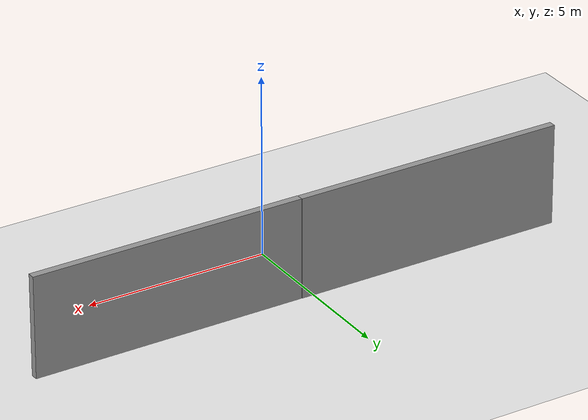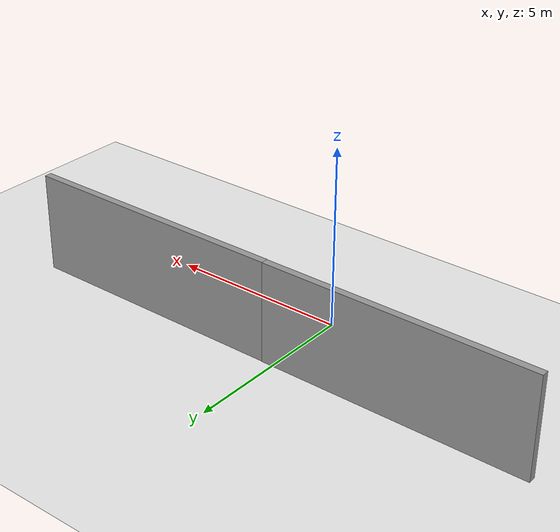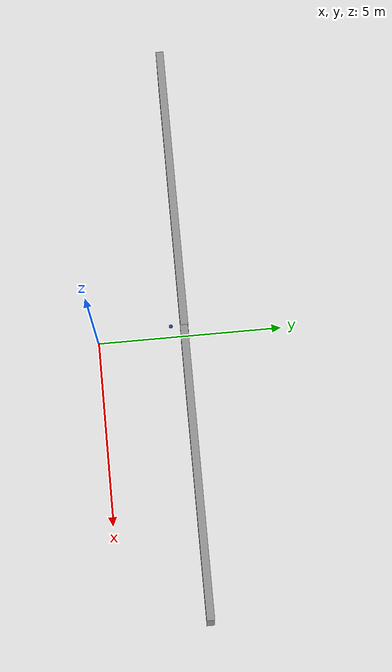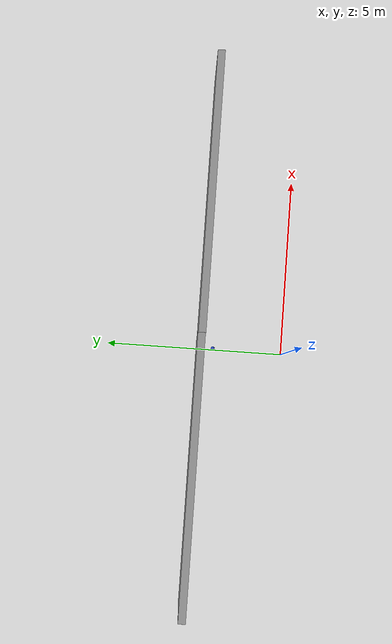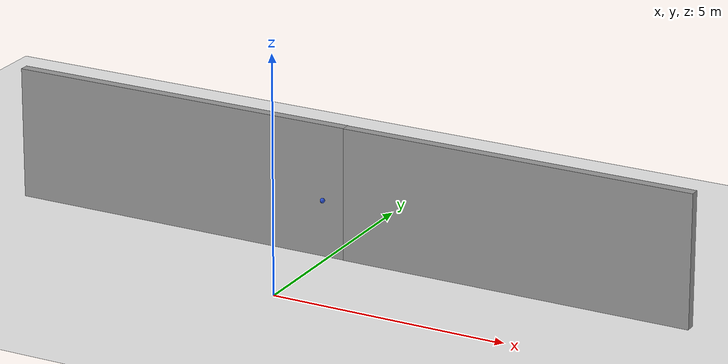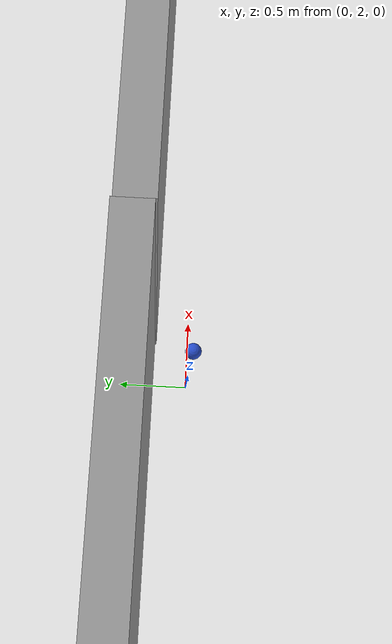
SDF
<sdf version="1.6">
 <world name="default">
  <scene><shadows>0</shadows><background>1 1 1 1</background><ambient>0.4 0.4 0.4 1</ambient></scene>
  <light name="sun" type="directional">
   <pose>0 0 10 0 -0 0</pose>
   <diffuse>0.8 0.8 0.8 1</diffuse>
   <specular>0.1 0.1 0.1 1</specular>
   <attenuation>
    <range>1000</range>
    <constant>0.9</constant>
    <linear>0.01</linear>
    <quadratic>0.001</quadratic>
   </attenuation>
   <direction>-0.5 0.5 -1</direction>
  </light>
  <model name="ground_plane">
   <static>1</static>
   <link name="link">
    <collision name="collision">
     <geometry><plane><normal>0 0 1</normal><size>100 100</size></plane></geometry>
     <surface><friction><ode><mu>100</mu><mu2>50</mu2></ode></friction></surface>
    </collision>
    <visual name="visual">
     <cast_shadows>0</cast_shadows>
     <geometry><plane><normal>0 0 1</normal><size>100 100</size></plane></geometry>
     <material>
      <script><uri>file://media/materials/scripts/gazebo.material</uri><name>Gazebo/White</name></script>
     </material>
    </visual>
   </link>
  </model>
  <model name="box">
   <pose>0 2 1.3 0 -0 0</pose>
   <link name="link">
    <collision name="collision"><geometry><sphere><radius>0.05</radius></sphere></geometry></collision>
    <visual name="visual">
     <geometry><sphere><radius>0.05</radius></sphere></geometry>
     <material>
      <script><name>Gazebo/Blue</name><uri>file://media/materials/scripts/gazebo.material</uri></script>
     </material>
    </visual>
    <inertial>
     <inertia><ixx>1</ixx><ixy>0</ixy><ixz>0</ixz><iyy>1</iyy><iyz>0</iyz><izz>1</izz></inertia>
     <mass>1</mass>
    </inertial>
   </link>
  </model>
  <model name="box">
   <pose>0 2 1.3 0 -0 0</pose>
   <link name="link">
    <collision name="collision"><geometry><sphere><radius>0.05</radius></sphere></geometry></collision>
    <visual name="visual">
     <geometry><sphere><radius>0.05</radius></sphere></geometry>
     <material>
      <script><name>Gazebo/Blue</name><uri>file://media/materials/scripts/gazebo.material</uri></script>
     </material>
    </visual>
    <inertial>
     <inertia><ixx>1</ixx><ixy>0</ixy><ixz>0</ixz><iyy>1</iyy><iyz>0</iyz><izz>1</izz></inertia>
     <mass>1</mass>
    </inertial>
   </link>
  </model>
  <model name="box">
   <pose>0 2 1.3 0 -0 0</pose>
   <link name="link">
    <collision name="collision"><geometry><sphere><radius>0.05</radius></sphere></geometry></collision>
    <visual name="visual">
     <geometry><sphere><radius>0.05</radius></sphere></geometry>
     <material>
      <script><name>Gazebo/Blue</name><uri>file://media/materials/scripts/gazebo.material</uri></script>
     </material>
    </visual>
    <inertial>
     <inertia><ixx>1</ixx><ixy>0</ixy><ixz>0</ixz><iyy>1</iyy><iyz>0</iyz><izz>1</izz></inertia>
     <mass>1</mass>
    </inertial>
   </link>
  </model>
  <model name="box">
   <pose>0 2 1.3 0 -0 0</pose>
   <link name="link">
    <collision name="collision"><geometry><sphere><radius>0.05</radius></sphere></geometry></collision>
    <visual name="visual">
     <geometry><sphere><radius>0.05</radius></sphere></geometry>
     <material>
      <script><name>Gazebo/Blue</name><uri>file://media/materials/scripts/gazebo.material</uri></script>
     </material>
    </visual>
    <inertial>
     <inertia><ixx>1</ixx><ixy>0</ixy><ixz>0</ixz><iyy>1</iyy><iyz>0</iyz><izz>1</izz></inertia>
     <mass>1</mass>
    </inertial>
   </link>
  </model>
  <gravity>0 0 0</gravity>
  <magnetic_field>6e-06 2.3e-05 -4.2e-05</magnetic_field>
  <atmosphere type="adiabatic"/>
  <physics name="default_physics" default="0" type="ode">
   <max_step_size>0.001</max_step_size>
   <real_time_factor>1</real_time_factor>
   <real_time_update_rate>1000</real_time_update_rate>
  </physics>
  <scene><ambient>0.4 0.4 0.4 1</ambient><background>0.7 0.7 0.7 1</background><shadows>1</shadows></scene>
  <spherical_coordinates>
   <surface_model>EARTH_WGS84</surface_model>
   <latitude_deg>0</latitude_deg>
   <longitude_deg>0</longitude_deg>
   <elevation>0</elevation>
   <heading_deg>0</heading_deg>
  </spherical_coordinates>
  <model name="box">
   <pose>0 2 1.3 0 -0 0</pose>
   <link name="link">
    <collision name="collision"><geometry><sphere><radius>0.05</radius></sphere></geometry></collision>
    <visual name="visual">
     <geometry><sphere><radius>0.05</radius></sphere></geometry>
     <material>
      <script><name>Gazebo/Blue</name><uri>file://media/materials/scripts/gazebo.material</uri></script>
     </material>
    </visual>
    <inertial>
     <inertia><ixx>1</ixx><ixy>0</ixy><ixz>0</ixz><iyy>1</iyy><iyz>0</iyz><izz>1</izz></inertia>
     <mass>1</mass>
    </inertial>
   </link>
  </model>
  <model name="grey_wall">
   <static>1</static>
   <link name="link">
    <pose>0 0 1.4 0 -0 0</pose>
    <collision name="collision"><geometry><box><size>7.5 0.2 2.8</size></box></geometry></collision>
    <visual name="visual">
     <cast_shadows>0</cast_shadows>
     <geometry><box><size>7.5 0.2 2.8</size></box></geometry>
     <material>
      <script>
       <uri>model://grey_wall/materials/scripts</uri>
       <uri>model://grey_wall/materials/textures</uri>
       <name>vrc/grey_wall</name>
      </script>
     </material>
    </visual>
   </link>
   <pose>-3.41724 2.351 0 0 -0 0</pose>
  </model>
  <model name="grey_wall_0">
   <static>1</static>
   <link name="link">
    <pose>0 0 1.4 0 -0 0</pose>
    <collision name="collision"><geometry><box><size>7.5 0.2 2.8</size></box></geometry></collision>
    <visual name="visual">
     <cast_shadows>0</cast_shadows>
     <geometry><box><size>7.5 0.2 2.8</size></box></geometry>
     <material>
      <script>
       <uri>model://grey_wall/materials/scripts</uri>
       <uri>model://grey_wall/materials/textures</uri>
       <name>vrc/grey_wall</name>
      </script>
     </material>
    </visual>
   </link>
   <pose>4.08182 2.34116 0 0 -0 0</pose>
  </model>
 </world>
</sdf>
